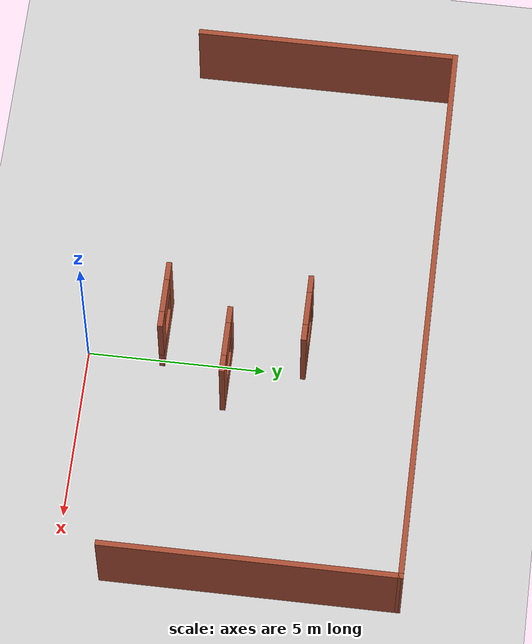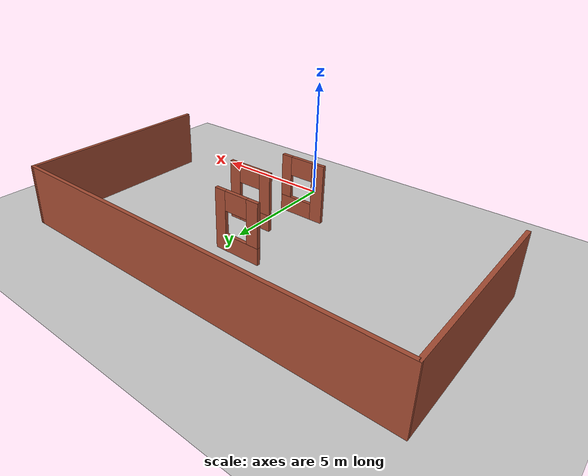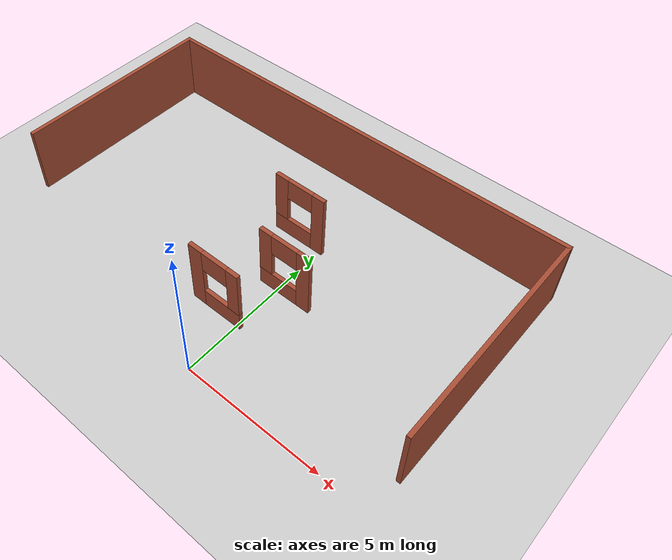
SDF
<sdf version="1.5">
 <world name="default">
  <spherical_coordinates>
   <latitude_deg>48.8789</latitude_deg>
   <longitude_deg>2.36778</longitude_deg>
   <surface_model>EARTH_WGS84</surface_model>
   <elevation>0</elevation>
   <heading_deg>0</heading_deg>
  </spherical_coordinates>
  <physics name="default_physics" default="0" type="ode">
   <real_time_update_rate>1000</real_time_update_rate>
   <max_step_size>0.001</max_step_size>
   <real_time_factor>1</real_time_factor>
   <max_contacts>20</max_contacts>
   <gravity>0 0 -9.81</gravity>
   <magnetic_field>0 2.1e-05 -4.3e-05</magnetic_field>
   <ode>
    <solver>
     <type>world</type>
     <min_step_size>0.0001</min_step_size>
     <iters>50</iters>
     <precon_iters>0</precon_iters>
     <sor>1.4</sor>
     <use_dynamic_moi_rescaling>1</use_dynamic_moi_rescaling>
    </solver>
    <constraints>
     <cfm>0</cfm>
     <erp>0.2</erp>
     <contact_max_correcting_vel>100</contact_max_correcting_vel>
     <contact_surface_layer>0.001</contact_surface_layer>
    </constraints>
   </ode>
  </physics>
  <atmosphere type="adiabatic">
   <temperature>298.15</temperature>
   <pressure>101325</pressure>
   <temperature_gradient>-0.0065</temperature_gradient>
  </atmosphere>
  <plugin name="wind" filename="libsphinx_wind.so">
   <magnitude_mean>0.0</magnitude_mean>
   <direction_mean>0.0</direction_mean>
   <elevation_mean>0.0</elevation_mean>
   <magnitude_time_for_rise>10.0</magnitude_time_for_rise>
   <direction_time_for_rise>30.0</direction_time_for_rise>
   <elevation_time_for_rise>0.0</elevation_time_for_rise>
   <magnitude_expr>val*(1+0.05*sin(2*pi*time/15))</magnitude_expr>
   <direction_expr>360*time/60</direction_expr>
   <elevation_expr>0.03*noise()</elevation_expr>
  </plugin>
  <light name="sun" type="directional">
   <pose>0 0 10 0 -0 0</pose>
   <diffuse>0.8 0.8 0.8 1</diffuse>
   <specular>0.2 0.2 0.2 1</specular>
   <attenuation>
    <range>1000</range>
    <constant>0.9</constant>
    <linear>0.01</linear>
    <quadratic>0.001</quadratic>
   </attenuation>
   <direction>-0.5 0.1 -0.9</direction>
  </light>
  <model name="ground_plane">
   <static>1</static>
   <link name="link">
    <collision name="collision">
     <geometry><plane><normal>0 0 1</normal><size>100 100</size></plane></geometry>
     <surface><friction><ode><mu>100</mu><mu2>50</mu2></ode></friction></surface>
    </collision>
    <visual name="visual">
     <cast_shadows>0</cast_shadows>
     <geometry><plane><normal>0 0 1</normal><size>100 100</size></plane></geometry>
     <material>
      <script><uri>file://media/materials/scripts/gazebo.material</uri><name>Gazebo/Grey</name></script>
     </material>
    </visual>
   </link>
  </model>
  <scene><ambient>0.4 0.4 0.4 1</ambient><background>0.7 0.7 0.7 1</background><shadows>0</shadows></scene>
  <model name="m1">
   <pose>-1.339 5.36506 0 0 -0 0</pose>
   <link name="Wall_0">
    <pose>0.488 -3.25506 0 0 -0 0</pose>
    <visual name="Wall_0_Visual_0">
     <pose>-0.729132 0 1.25 0 -0 0</pose>
     <geometry><box><size>0.541736 0.15 2.5</size></box></geometry>
     <material>
      <script><uri>file://media/materials/scripts/gazebo.material</uri><name>Gazebo/Bricks</name></script>
      <ambient>1 1 1 1</ambient>
     </material>
    </visual>
    <collision name="Wall_0_Collision_0">
     <geometry><box><size>0.541736 0.15 2.5</size></box></geometry>
     <pose>-0.729132 0 1.25 0 -0 0</pose>
    </collision>
    <visual name="Wall_0_Visual_1">
     <pose>0.270868 0 0.35 0 -0 0</pose>
     <geometry><box><size>1.45826 0.15 0.7</size></box></geometry>
     <material>
      <script><uri>file://media/materials/scripts/gazebo.material</uri><name>Gazebo/Bricks</name></script>
      <ambient>1 1 1 1</ambient>
     </material>
    </visual>
    <collision name="Wall_0_Collision_1">
     <geometry><box><size>1.45826 0.15 0.7</size></box></geometry>
     <pose>0.270868 0 0.35 0 -0 0</pose>
    </collision>
    <visual name="Wall_0_Visual_2">
     <pose>0.770868 0 1.6 0 -0 0</pose>
     <geometry><box><size>0.458264 0.15 1.8</size></box></geometry>
     <material>
      <script><uri>file://media/materials/scripts/gazebo.material</uri><name>Gazebo/Bricks</name></script>
      <ambient>1 1 1 1</ambient>
     </material>
    </visual>
    <collision name="Wall_0_Collision_2">
     <geometry><box><size>0.458264 0.15 1.8</size></box></geometry>
     <pose>0.770868 0 1.6 0 -0 0</pose>
    </collision>
    <visual name="Wall_0_Visual_3">
     <pose>0.041736 0 2.1 0 -0 0</pose>
     <geometry><box><size>1 0.15 0.8</size></box></geometry>
     <material>
      <script><uri>file://media/materials/scripts/gazebo.material</uri><name>Gazebo/Bricks</name></script>
      <ambient>1 1 1 1</ambient>
     </material>
    </visual>
    <collision name="Wall_0_Collision_3">
     <geometry><box><size>1 0.15 0.8</size></box></geometry>
     <pose>0.041736 0 2.1 0 -0 0</pose>
    </collision>
   </link>
   <link name="Wall_2">
    <pose>1.655 -1.40206 0 0 -0 3.14159</pose>
    <visual name="Wall_2_Visual_0">
     <pose>-0.749625 0 1.25 0 -0 0</pose>
     <geometry><box><size>0.50075 0.15 2.5</size></box></geometry>
     <material>
      <script><uri>file://media/materials/scripts/gazebo.material</uri><name>Gazebo/Bricks</name></script>
      <ambient>1 1 1 1</ambient>
     </material>
    </visual>
    <collision name="Wall_2_Collision_0">
     <geometry><box><size>0.50075 0.15 2.5</size></box></geometry>
     <pose>-0.749625 0 1.25 0 -0 0</pose>
    </collision>
    <visual name="Wall_2_Visual_1">
     <pose>0.250375 0 0.35 0 -0 0</pose>
     <geometry><box><size>1.49925 0.15 0.7</size></box></geometry>
     <material>
      <script><uri>file://media/materials/scripts/gazebo.material</uri><name>Gazebo/Bricks</name></script>
      <ambient>1 1 1 1</ambient>
     </material>
    </visual>
    <collision name="Wall_2_Collision_1">
     <geometry><box><size>1.49925 0.15 0.7</size></box></geometry>
     <pose>0.250375 0 0.35 0 -0 0</pose>
    </collision>
    <visual name="Wall_2_Visual_2">
     <pose>0.750375 0 1.6 0 -0 0</pose>
     <geometry><box><size>0.49925 0.15 1.8</size></box></geometry>
     <material>
      <script><uri>file://media/materials/scripts/gazebo.material</uri><name>Gazebo/Bricks</name></script>
      <ambient>1 1 1 1</ambient>
     </material>
    </visual>
    <collision name="Wall_2_Collision_2">
     <geometry><box><size>0.49925 0.15 1.8</size></box></geometry>
     <pose>0.750375 0 1.6 0 -0 0</pose>
    </collision>
    <visual name="Wall_2_Visual_3">
     <pose>0.00075 0 2.1 0 -0 0</pose>
     <geometry><box><size>1 0.15 0.8</size></box></geometry>
     <material>
      <script><uri>file://media/materials/scripts/gazebo.material</uri><name>Gazebo/Bricks</name></script>
      <ambient>1 1 1 1</ambient>
     </material>
    </visual>
    <collision name="Wall_2_Collision_3">
     <geometry><box><size>1 0.15 0.8</size></box></geometry>
     <pose>0.00075 0 2.1 0 -0 0</pose>
    </collision>
   </link>
   <link name="Wall_4">
    <pose>0.444 0.714942 0 0 -0 3.14159</pose>
    <visual name="Wall_4_Visual_0">
     <pose>-0.759945 0 1.25 0 -0 0</pose>
     <geometry><box><size>0.480111 0.15 2.5</size></box></geometry>
     <material>
      <script><uri>file://media/materials/scripts/gazebo.material</uri><name>Gazebo/Bricks</name></script>
      <ambient>1 1 1 1</ambient>
     </material>
    </visual>
    <collision name="Wall_4_Collision_0">
     <geometry><box><size>0.480111 0.15 2.5</size></box></geometry>
     <pose>-0.759945 0 1.25 0 -0 0</pose>
    </collision>
    <visual name="Wall_4_Visual_1">
     <pose>0.240055 0 0.35 0 -0 0</pose>
     <geometry><box><size>1.51989 0.15 0.7</size></box></geometry>
     <material>
      <script><uri>file://media/materials/scripts/gazebo.material</uri><name>Gazebo/Bricks</name></script>
      <ambient>1 1 1 1</ambient>
     </material>
    </visual>
    <collision name="Wall_4_Collision_1">
     <geometry><box><size>1.51989 0.15 0.7</size></box></geometry>
     <pose>0.240055 0 0.35 0 -0 0</pose>
    </collision>
    <visual name="Wall_4_Visual_2">
     <pose>0.740055 0 1.6 0 -0 0</pose>
     <geometry><box><size>0.519889 0.15 1.8</size></box></geometry>
     <material>
      <script><uri>file://media/materials/scripts/gazebo.material</uri><name>Gazebo/Bricks</name></script>
      <ambient>1 1 1 1</ambient>
     </material>
    </visual>
    <collision name="Wall_4_Collision_2">
     <geometry><box><size>0.519889 0.15 1.8</size></box></geometry>
     <pose>0.740055 0 1.6 0 -0 0</pose>
    </collision>
    <visual name="Wall_4_Visual_3">
     <pose>-0.019889 0 2.1 0 -0 0</pose>
     <geometry><box><size>1 0.15 0.8</size></box></geometry>
     <material>
      <script><uri>file://media/materials/scripts/gazebo.material</uri><name>Gazebo/Bricks</name></script>
      <ambient>1 1 1 1</ambient>
     </material>
    </visual>
    <collision name="Wall_4_Collision_3">
     <geometry><box><size>1 0.15 0.8</size></box></geometry>
     <pose>-0.019889 0 2.1 0 -0 0</pose>
    </collision>
   </link>
   <link name="Wall_6">
    <collision name="Wall_6_Collision">
     <geometry><box><size>7.47656 0.15 2.5</size></box></geometry>
     <pose>0 0 1.25 0 -0 0</pose>
    </collision>
    <visual name="Wall_6_Visual">
     <pose>0 0 1.25 0 -0 0</pose>
     <geometry><box><size>7.47656 0.15 2.5</size></box></geometry>
     <material>
      <script><uri>file://media/materials/scripts/gazebo.material</uri><name>Gazebo/Bricks</name></script>
      <ambient>1 1 1 1</ambient>
     </material>
    </visual>
    <pose>-8.052 0.361442 0 0 -0 1.5708</pose>
   </link>
   <link name="Wall_7">
    <collision name="Wall_7_Collision">
     <geometry><box><size>16.2541 0.15 2.5</size></box></geometry>
     <pose>0 0 1.25 0 -0 0</pose>
    </collision>
    <visual name="Wall_7_Visual">
     <pose>0 0 1.25 0 -0 0</pose>
     <geometry><box><size>16.2541 0.15 2.5</size></box></geometry>
     <material>
      <script><uri>file://media/materials/scripts/gazebo.material</uri><name>Gazebo/Bricks</name></script>
      <ambient>1 1 1 1</ambient>
     </material>
    </visual>
    <pose>0 4.03744 0 0 -0 0.001552</pose>
   </link>
   <link name="Wall_8">
    <collision name="Wall_8_Collision">
     <geometry><box><size>8.25 0.15 2.5</size></box></geometry>
     <pose>0 0 1.25 0 -0 0</pose>
    </collision>
    <visual name="Wall_8_Visual">
     <pose>0 0 1.25 0 -0 0</pose>
     <geometry><box><size>8.25 0.15 2.5</size></box></geometry>
     <material>
      <script><uri>file://media/materials/scripts/gazebo.material</uri><name>Gazebo/Bricks</name></script>
      <ambient>1 1 1 1</ambient>
     </material>
    </visual>
    <pose>8.052 -5.8e-05 0 0 0 -1.5708</pose>
   </link>
   <static>1</static>
  </model>
 </world>
</sdf>
